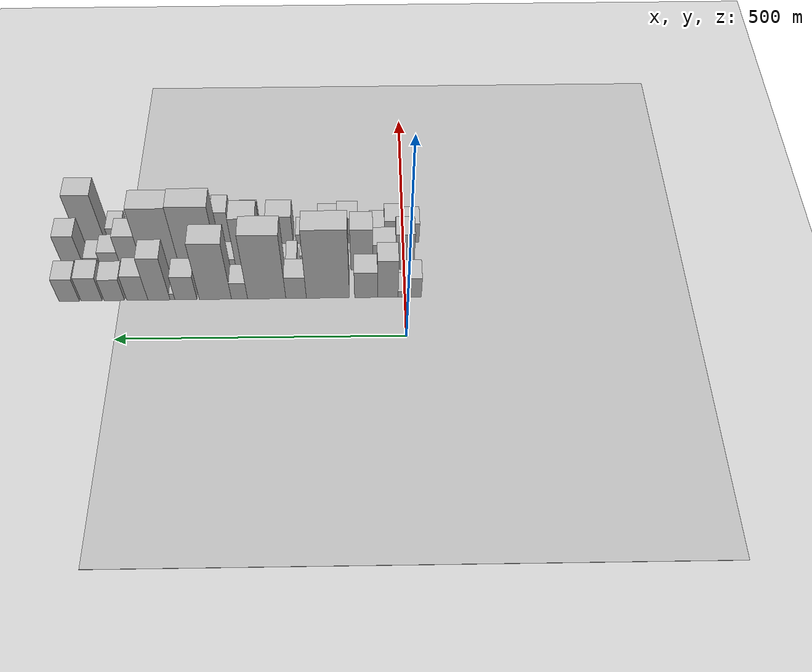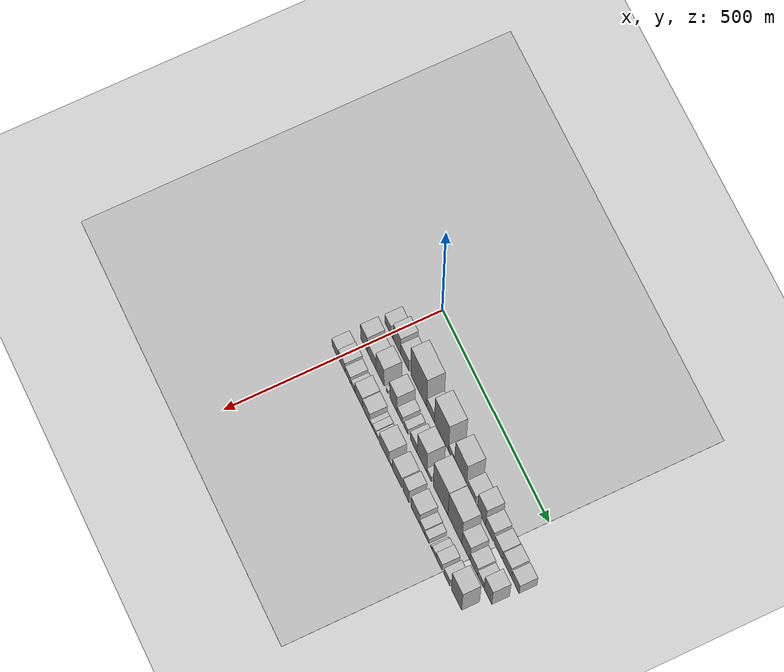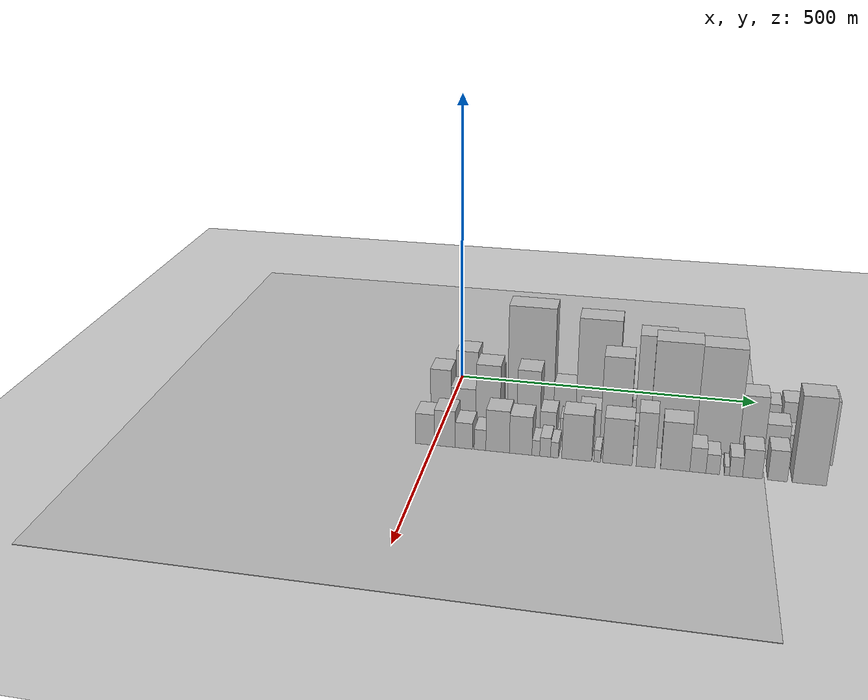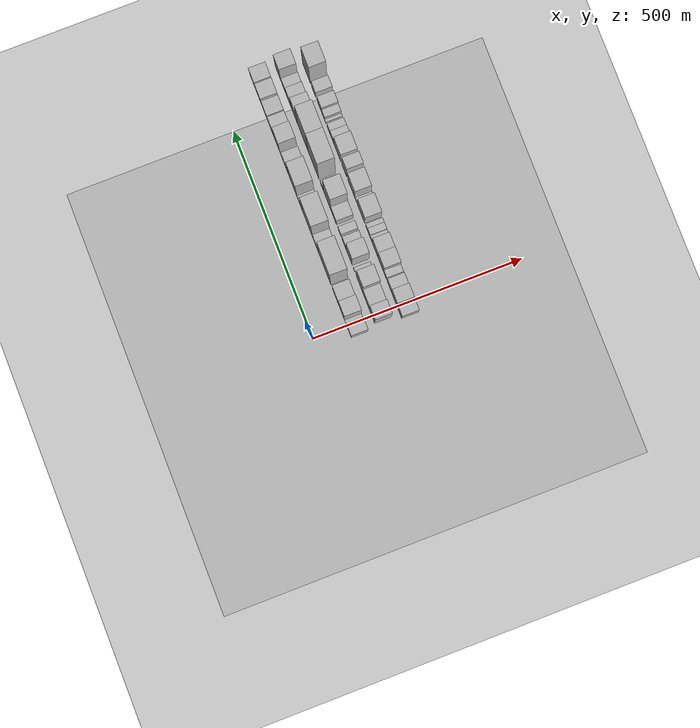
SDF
<sdf version="1.6">
 <world name="default">
  <include><name>ground_plane_1</name><uri>model://HANNAS_ground_plane</uri></include>
  <include>
   <name>ground_plane_2</name>
   <uri>model://HANNAS_ground_plane</uri>
   <pose>100 0 0  0 0 0</pose>
  </include>
  <model name="building_18">
   <static>1</static>
   <pose>100.0000 -13.6003 0 0.000000 0.000000 0.000000</pose>
   <link name="link">
    <pose>0 0 28.50 0 0 0</pose>
    <collision name="collision"><geometry><box><size>40.0000 29.0871 57.0000</size></box></geometry></collision>
    <visual name="visual">
     <cast_shadows>0</cast_shadows>
     <geometry><box><size>40.0000 29.0871 57.0000</size></box></geometry>
     <material>
      <script>
       <uri>model://HANNAS_wall/materials/scripts</uri>
       <uri>model://HANNAS_wall/materials/textures</uri>
       <name>vrc/HANNAS_wall</name>
      </script>
     </material>
    </visual>
   </link>
  </model>
  <model name="building_19">
   <static>1</static>
   <pose>100.0000 8.3785 0 0.000000 0.000000 0.000000</pose>
   <link name="link">
    <pose>0 0 9.00 0 0 0</pose>
    <collision name="collision"><geometry><box><size>40.0000 8.8705 18.0000</size></box></geometry></collision>
    <visual name="visual">
     <cast_shadows>0</cast_shadows>
     <geometry><box><size>40.0000 8.8705 18.0000</size></box></geometry>
     <material>
      <script>
       <uri>model://HANNAS_wall/materials/scripts</uri>
       <uri>model://HANNAS_wall/materials/textures</uri>
       <name>vrc/HANNAS_wall</name>
      </script>
     </material>
    </visual>
   </link>
  </model>
  <model name="building_20">
   <static>1</static>
   <pose>100.0000 30.8824 0 0.000000 0.000000 0.000000</pose>
   <link name="link">
    <pose>0 0 54.00 0 0 0</pose>
    <collision name="collision"><geometry><box><size>40.0000 36.1372 108.0000</size></box></geometry></collision>
    <visual name="visual">
     <cast_shadows>0</cast_shadows>
     <geometry><box><size>40.0000 36.1372 108.0000</size></box></geometry>
     <material>
      <script>
       <uri>model://HANNAS_wall/materials/scripts</uri>
       <uri>model://HANNAS_wall/materials/textures</uri>
       <name>vrc/HANNAS_wall</name>
      </script>
     </material>
    </visual>
   </link>
  </model>
  <model name="building_21">
   <static>1</static>
   <pose>100.0000 68.9790 0 0.000000 0.000000 0.000000</pose>
   <link name="link">
    <pose>0 0 37.50 0 0 0</pose>
    <collision name="collision"><geometry><box><size>40.0000 40.0560 75.0000</size></box></geometry></collision>
    <visual name="visual">
     <cast_shadows>0</cast_shadows>
     <geometry><box><size>40.0000 40.0560 75.0000</size></box></geometry>
     <material>
      <script>
       <uri>model://HANNAS_wall/materials/scripts</uri>
       <uri>model://HANNAS_wall/materials/textures</uri>
       <name>vrc/HANNAS_wall</name>
      </script>
     </material>
    </visual>
   </link>
  </model>
  <model name="building_22">
   <static>1</static>
   <pose>100.0000 135.8817 0 0.000000 0.000000 0.000000</pose>
   <link name="link">
    <pose>0 0 97.50 0 0 0</pose>
    <collision name="collision"><geometry><box><size>40.0000 75.7494 195.0000</size></box></geometry></collision>
    <visual name="visual">
     <cast_shadows>0</cast_shadows>
     <geometry><box><size>40.0000 75.7494 195.0000</size></box></geometry>
     <material>
      <script>
       <uri>model://HANNAS_wall/materials/scripts</uri>
       <uri>model://HANNAS_wall/materials/textures</uri>
       <name>vrc/HANNAS_wall</name>
      </script>
     </material>
    </visual>
   </link>
  </model>
  <model name="building_23">
   <static>1</static>
   <pose>100.0000 191.7278 0 0.000000 0.000000 0.000000</pose>
   <link name="link">
    <pose>0 0 31.50 0 0 0</pose>
    <collision name="collision"><geometry><box><size>40.0000 35.9429 63.0000</size></box></geometry></collision>
    <visual name="visual">
     <cast_shadows>0</cast_shadows>
     <geometry><box><size>40.0000 35.9429 63.0000</size></box></geometry>
     <material>
      <script>
       <uri>model://HANNAS_wall/materials/scripts</uri>
       <uri>model://HANNAS_wall/materials/textures</uri>
       <name>vrc/HANNAS_wall</name>
      </script>
     </material>
    </visual>
   </link>
  </model>
  <model name="building_24">
   <static>1</static>
   <pose>100.0000 243.2532 0 0.000000 0.000000 0.000000</pose>
   <link name="link">
    <pose>0 0 91.50 0 0 0</pose>
    <collision name="collision"><geometry><box><size>40.0000 67.1081 183.0000</size></box></geometry></collision>
    <visual name="visual">
     <cast_shadows>0</cast_shadows>
     <geometry><box><size>40.0000 67.1081 183.0000</size></box></geometry>
     <material>
      <script>
       <uri>model://HANNAS_wall/materials/scripts</uri>
       <uri>model://HANNAS_wall/materials/textures</uri>
       <name>vrc/HANNAS_wall</name>
      </script>
     </material>
    </visual>
   </link>
  </model>
  <model name="building_25">
   <static>1</static>
   <pose>100.0000 290.9221 0 0.000000 0.000000 0.000000</pose>
   <link name="link">
    <pose>0 0 24.00 0 0 0</pose>
    <collision name="collision"><geometry><box><size>40.0000 28.2296 48.0000</size></box></geometry></collision>
    <visual name="visual">
     <cast_shadows>0</cast_shadows>
     <geometry><box><size>40.0000 28.2296 48.0000</size></box></geometry>
     <material>
      <script>
       <uri>model://HANNAS_wall/materials/scripts</uri>
       <uri>model://HANNAS_wall/materials/textures</uri>
       <name>vrc/HANNAS_wall</name>
      </script>
     </material>
    </visual>
   </link>
  </model>
  <model name="building_26">
   <static>1</static>
   <pose>100.0000 333.1549 0 0.000000 0.000000 0.000000</pose>
   <link name="link">
    <pose>0 0 81.00 0 0 0</pose>
    <collision name="collision"><geometry><box><size>40.0000 56.2360 162.0000</size></box></geometry></collision>
    <visual name="visual">
     <cast_shadows>0</cast_shadows>
     <geometry><box><size>40.0000 56.2360 162.0000</size></box></geometry>
     <material>
      <script>
       <uri>model://HANNAS_wall/materials/scripts</uri>
       <uri>model://HANNAS_wall/materials/textures</uri>
       <name>vrc/HANNAS_wall</name>
      </script>
     </material>
    </visual>
   </link>
  </model>
  <model name="building_27">
   <static>1</static>
   <pose>100.0000 384.6901 0 0.000000 0.000000 0.000000</pose>
   <link name="link">
    <pose>0 0 34.50 0 0 0</pose>
    <collision name="collision"><geometry><box><size>40.0000 38.8345 69.0000</size></box></geometry></collision>
    <visual name="visual">
     <cast_shadows>0</cast_shadows>
     <geometry><box><size>40.0000 38.8345 69.0000</size></box></geometry>
     <material>
      <script>
       <uri>model://HANNAS_wall/materials/scripts</uri>
       <uri>model://HANNAS_wall/materials/textures</uri>
       <name>vrc/HANNAS_wall</name>
      </script>
     </material>
    </visual>
   </link>
  </model>
  <model name="building_28">
   <static>1</static>
   <pose>100.0000 408.3020 0 0.000000 0.000000 0.000000</pose>
   <link name="link">
    <pose>0 0 9.00 0 0 0</pose>
    <collision name="collision"><geometry><box><size>40.0000 8.3891 18.0000</size></box></geometry></collision>
    <visual name="visual">
     <cast_shadows>0</cast_shadows>
     <geometry><box><size>40.0000 8.3891 18.0000</size></box></geometry>
     <material>
      <script>
       <uri>model://HANNAS_wall/materials/scripts</uri>
       <uri>model://HANNAS_wall/materials/textures</uri>
       <name>vrc/HANNAS_wall</name>
      </script>
     </material>
    </visual>
   </link>
  </model>
  <model name="building_29">
   <static>1</static>
   <pose>100.0000 431.8983 0 0.000000 0.000000 0.000000</pose>
   <link name="link">
    <pose>0 0 61.50 0 0 0</pose>
    <collision name="collision"><geometry><box><size>40.0000 38.8036 123.0000</size></box></geometry></collision>
    <visual name="visual">
     <cast_shadows>0</cast_shadows>
     <geometry><box><size>40.0000 38.8036 123.0000</size></box></geometry>
     <material>
      <script>
       <uri>model://HANNAS_wall/materials/scripts</uri>
       <uri>model://HANNAS_wall/materials/textures</uri>
       <name>vrc/HANNAS_wall</name>
      </script>
     </material>
    </visual>
   </link>
  </model>
  <model name="building_30">
   <static>1</static>
   <pose>100.0000 469.7049 0 0.000000 0.000000 0.000000</pose>
   <link name="link">
    <pose>0 0 36.00 0 0 0</pose>
    <collision name="collision"><geometry><box><size>40.0000 36.8095 72.0000</size></box></geometry></collision>
    <visual name="visual">
     <cast_shadows>0</cast_shadows>
     <geometry><box><size>40.0000 36.8095 72.0000</size></box></geometry>
     <material>
      <script>
       <uri>model://HANNAS_wall/materials/scripts</uri>
       <uri>model://HANNAS_wall/materials/textures</uri>
       <name>vrc/HANNAS_wall</name>
      </script>
     </material>
    </visual>
   </link>
  </model>
  <model name="building_31">
   <static>1</static>
   <pose>100.0000 510.0738 0 0.000000 0.000000 0.000000</pose>
   <link name="link">
    <pose>0 0 31.50 0 0 0</pose>
    <collision name="collision"><geometry><box><size>40.0000 35.9283 63.0000</size></box></geometry></collision>
    <visual name="visual">
     <cast_shadows>0</cast_shadows>
     <geometry><box><size>40.0000 35.9283 63.0000</size></box></geometry>
     <material>
      <script>
       <uri>model://HANNAS_wall/materials/scripts</uri>
       <uri>model://HANNAS_wall/materials/textures</uri>
       <name>vrc/HANNAS_wall</name>
      </script>
     </material>
    </visual>
   </link>
  </model>
  <model name="building_32">
   <static>1</static>
   <pose>100.0000 549.5832 0 0.000000 0.000000 0.000000</pose>
   <link name="link">
    <pose>0 0 34.50 0 0 0</pose>
    <collision name="collision"><geometry><box><size>40.0000 37.0906 69.0000</size></box></geometry></collision>
    <visual name="visual">
     <cast_shadows>0</cast_shadows>
     <geometry><box><size>40.0000 37.0906 69.0000</size></box></geometry>
     <material>
      <script>
       <uri>model://HANNAS_wall/materials/scripts</uri>
       <uri>model://HANNAS_wall/materials/textures</uri>
       <name>vrc/HANNAS_wall</name>
      </script>
     </material>
    </visual>
   </link>
  </model>
  <model name="building_33">
   <static>1</static>
   <pose>100.0000 588.9337 0 0.000000 0.000000 0.000000</pose>
   <link name="link">
    <pose>0 0 33.00 0 0 0</pose>
    <collision name="collision"><geometry><box><size>40.0000 35.6104 66.0000</size></box></geometry></collision>
    <visual name="visual">
     <cast_shadows>0</cast_shadows>
     <geometry><box><size>40.0000 35.6104 66.0000</size></box></geometry>
     <material>
      <script>
       <uri>model://HANNAS_wall/materials/scripts</uri>
       <uri>model://HANNAS_wall/materials/textures</uri>
       <name>vrc/HANNAS_wall</name>
      </script>
     </material>
    </visual>
   </link>
  </model>
  <model name="building_50">
   <static>1</static>
   <pose>160.0000 -0.6648 0 0.000000 0.000000 0.000000</pose>
   <link name="link">
    <pose>0 0 51.00 0 0 0</pose>
    <collision name="collision"><geometry><box><size>40.0000 32.8262 102.0000</size></box></geometry></collision>
    <visual name="visual">
     <cast_shadows>0</cast_shadows>
     <geometry><box><size>40.0000 32.8262 102.0000</size></box></geometry>
     <material>
      <script>
       <uri>model://HANNAS_wall/materials/scripts</uri>
       <uri>model://HANNAS_wall/materials/textures</uri>
       <name>vrc/HANNAS_wall</name>
      </script>
     </material>
    </visual>
   </link>
  </model>
  <model name="building_51">
   <static>1</static>
   <pose>160.0000 36.0447 0 0.000000 0.000000 0.000000</pose>
   <link name="link">
    <pose>0 0 36.00 0 0 0</pose>
    <collision name="collision"><geometry><box><size>40.0000 40.5929 72.0000</size></box></geometry></collision>
    <visual name="visual">
     <cast_shadows>0</cast_shadows>
     <geometry><box><size>40.0000 40.5929 72.0000</size></box></geometry>
     <material>
      <script>
       <uri>model://HANNAS_wall/materials/scripts</uri>
       <uri>model://HANNAS_wall/materials/textures</uri>
       <name>vrc/HANNAS_wall</name>
      </script>
     </material>
    </visual>
   </link>
  </model>
  <model name="building_52">
   <static>1</static>
   <pose>160.0000 75.9765 0 0.000000 0.000000 0.000000</pose>
   <link name="link">
    <pose>0 0 58.50 0 0 0</pose>
    <collision name="collision"><geometry><box><size>40.0000 39.2706 117.0000</size></box></geometry></collision>
    <visual name="visual">
     <cast_shadows>0</cast_shadows>
     <geometry><box><size>40.0000 39.2706 117.0000</size></box></geometry>
     <material>
      <script>
       <uri>model://HANNAS_wall/materials/scripts</uri>
       <uri>model://HANNAS_wall/materials/textures</uri>
       <name>vrc/HANNAS_wall</name>
      </script>
     </material>
    </visual>
   </link>
  </model>
  <model name="building_53">
   <static>1</static>
   <pose>160.0000 109.2869 0 0.000000 0.000000 0.000000</pose>
   <link name="link">
    <pose>0 0 10.50 0 0 0</pose>
    <collision name="collision"><geometry><box><size>40.0000 9.3502 21.0000</size></box></geometry></collision>
    <visual name="visual">
     <cast_shadows>0</cast_shadows>
     <geometry><box><size>40.0000 9.3502 21.0000</size></box></geometry>
     <material>
      <script>
       <uri>model://HANNAS_wall/materials/scripts</uri>
       <uri>model://HANNAS_wall/materials/textures</uri>
       <name>vrc/HANNAS_wall</name>
      </script>
     </material>
    </visual>
   </link>
  </model>
  <model name="building_54">
   <static>1</static>
   <pose>160.0000 140.4890 0 0.000000 0.000000 0.000000</pose>
   <link name="link">
    <pose>0 0 57.00 0 0 0</pose>
    <collision name="collision"><geometry><box><size>40.0000 37.0540 114.0000</size></box></geometry></collision>
    <visual name="visual">
     <cast_shadows>0</cast_shadows>
     <geometry><box><size>40.0000 37.0540 114.0000</size></box></geometry>
     <material>
      <script>
       <uri>model://HANNAS_wall/materials/scripts</uri>
       <uri>model://HANNAS_wall/materials/textures</uri>
       <name>vrc/HANNAS_wall</name>
      </script>
     </material>
    </visual>
   </link>
  </model>
  <model name="building_55">
   <static>1</static>
   <pose>160.0000 171.8377 0 0.000000 0.000000 0.000000</pose>
   <link name="link">
    <pose>0 0 22.50 0 0 0</pose>
    <collision name="collision"><geometry><box><size>40.0000 25.6434 45.0000</size></box></geometry></collision>
    <visual name="visual">
     <cast_shadows>0</cast_shadows>
     <geometry><box><size>40.0000 25.6434 45.0000</size></box></geometry>
     <material>
      <script>
       <uri>model://HANNAS_wall/materials/scripts</uri>
       <uri>model://HANNAS_wall/materials/textures</uri>
       <name>vrc/HANNAS_wall</name>
      </script>
     </material>
    </visual>
   </link>
  </model>
  <model name="building_56">
   <static>1</static>
   <pose>160.0000 200.3286 0 0.000000 0.000000 0.000000</pose>
   <link name="link">
    <pose>0 0 18.00 0 0 0</pose>
    <collision name="collision"><geometry><box><size>40.0000 19.3385 36.0000</size></box></geometry></collision>
    <visual name="visual">
     <cast_shadows>0</cast_shadows>
     <geometry><box><size>40.0000 19.3385 36.0000</size></box></geometry>
     <material>
      <script>
       <uri>model://HANNAS_wall/materials/scripts</uri>
       <uri>model://HANNAS_wall/materials/textures</uri>
       <name>vrc/HANNAS_wall</name>
      </script>
     </material>
    </visual>
   </link>
  </model>
  <model name="building_57">
   <static>1</static>
   <pose>160.0000 236.9625 0 0.000000 0.000000 0.000000</pose>
   <link name="link">
    <pose>0 0 28.50 0 0 0</pose>
    <collision name="collision"><geometry><box><size>40.0000 33.9293 57.0000</size></box></geometry></collision>
    <visual name="visual">
     <cast_shadows>0</cast_shadows>
     <geometry><box><size>40.0000 33.9293 57.0000</size></box></geometry>
     <material>
      <script>
       <uri>model://HANNAS_wall/materials/scripts</uri>
       <uri>model://HANNAS_wall/materials/textures</uri>
       <name>vrc/HANNAS_wall</name>
      </script>
     </material>
    </visual>
   </link>
  </model>
  <model name="building_58">
   <static>1</static>
   <pose>160.0000 276.8213 0 0.000000 0.000000 0.000000</pose>
   <link name="link">
    <pose>0 0 75.00 0 0 0</pose>
    <collision name="collision"><geometry><box><size>40.0000 45.7883 150.0000</size></box></geometry></collision>
    <visual name="visual">
     <cast_shadows>0</cast_shadows>
     <geometry><box><size>40.0000 45.7883 150.0000</size></box></geometry>
     <material>
      <script>
       <uri>model://HANNAS_wall/materials/scripts</uri>
       <uri>model://HANNAS_wall/materials/textures</uri>
       <name>vrc/HANNAS_wall</name>
      </script>
     </material>
    </visual>
   </link>
  </model>
  <model name="building_59">
   <static>1</static>
   <pose>160.0000 310.1800 0 0.000000 0.000000 0.000000</pose>
   <link name="link">
    <pose>0 0 18.00 0 0 0</pose>
    <collision name="collision"><geometry><box><size>40.0000 20.9290 36.0000</size></box></geometry></collision>
    <visual name="visual">
     <cast_shadows>0</cast_shadows>
     <geometry><box><size>40.0000 20.9290 36.0000</size></box></geometry>
     <material>
      <script>
       <uri>model://HANNAS_wall/materials/scripts</uri>
       <uri>model://HANNAS_wall/materials/textures</uri>
       <name>vrc/HANNAS_wall</name>
      </script>
     </material>
    </visual>
   </link>
  </model>
  <model name="building_60">
   <static>1</static>
   <pose>160.0000 364.5335 0 0.000000 0.000000 0.000000</pose>
   <link name="link">
    <pose>0 0 91.50 0 0 0</pose>
    <collision name="collision"><geometry><box><size>40.0000 69.7780 183.0000</size></box></geometry></collision>
    <visual name="visual">
     <cast_shadows>0</cast_shadows>
     <geometry><box><size>40.0000 69.7780 183.0000</size></box></geometry>
     <material>
      <script>
       <uri>model://HANNAS_wall/materials/scripts</uri>
       <uri>model://HANNAS_wall/materials/textures</uri>
       <name>vrc/HANNAS_wall</name>
      </script>
     </material>
    </visual>
   </link>
  </model>
  <model name="building_61">
   <static>1</static>
   <pose>160.0000 431.9102 0 0.000000 0.000000 0.000000</pose>
   <link name="link">
    <pose>0 0 90.00 0 0 0</pose>
    <collision name="collision"><geometry><box><size>40.0000 64.9753 180.0000</size></box></geometry></collision>
    <visual name="visual">
     <cast_shadows>0</cast_shadows>
     <geometry><box><size>40.0000 64.9753 180.0000</size></box></geometry>
     <material>
      <script>
       <uri>model://HANNAS_wall/materials/scripts</uri>
       <uri>model://HANNAS_wall/materials/textures</uri>
       <name>vrc/HANNAS_wall</name>
      </script>
     </material>
    </visual>
   </link>
  </model>
  <model name="building_62">
   <static>1</static>
   <pose>160.0000 483.4911 0 0.000000 0.000000 0.000000</pose>
   <link name="link">
    <pose>0 0 52.50 0 0 0</pose>
    <collision name="collision"><geometry><box><size>40.0000 38.1865 105.0000</size></box></geometry></collision>
    <visual name="visual">
     <cast_shadows>0</cast_shadows>
     <geometry><box><size>40.0000 38.1865 105.0000</size></box></geometry>
     <material>
      <script>
       <uri>model://HANNAS_wall/materials/scripts</uri>
       <uri>model://HANNAS_wall/materials/textures</uri>
       <name>vrc/HANNAS_wall</name>
      </script>
     </material>
    </visual>
   </link>
  </model>
  <model name="building_63">
   <static>1</static>
   <pose>160.0000 520.1741 0 0.000000 0.000000 0.000000</pose>
   <link name="link">
    <pose>0 0 30.00 0 0 0</pose>
    <collision name="collision"><geometry><box><size>40.0000 35.1795 60.0000</size></box></geometry></collision>
    <visual name="visual">
     <cast_shadows>0</cast_shadows>
     <geometry><box><size>40.0000 35.1795 60.0000</size></box></geometry>
     <material>
      <script>
       <uri>model://HANNAS_wall/materials/scripts</uri>
       <uri>model://HANNAS_wall/materials/textures</uri>
       <name>vrc/HANNAS_wall</name>
      </script>
     </material>
    </visual>
   </link>
  </model>
  <model name="building_64">
   <static>1</static>
   <pose>160.0000 551.1591 0 0.000000 0.000000 0.000000</pose>
   <link name="link">
    <pose>0 0 22.50 0 0 0</pose>
    <collision name="collision"><geometry><box><size>40.0000 26.7905 45.0000</size></box></geometry></collision>
    <visual name="visual">
     <cast_shadows>0</cast_shadows>
     <geometry><box><size>40.0000 26.7905 45.0000</size></box></geometry>
     <material>
      <script>
       <uri>model://HANNAS_wall/materials/scripts</uri>
       <uri>model://HANNAS_wall/materials/textures</uri>
       <name>vrc/HANNAS_wall</name>
      </script>
     </material>
    </visual>
   </link>
  </model>
  <model name="building_65">
   <static>1</static>
   <pose>160.0000 585.5333 0 0.000000 0.000000 0.000000</pose>
   <link name="link">
    <pose>0 0 54.00 0 0 0</pose>
    <collision name="collision"><geometry><box><size>40.0000 35.9578 108.0000</size></box></geometry></collision>
    <visual name="visual">
     <cast_shadows>0</cast_shadows>
     <geometry><box><size>40.0000 35.9578 108.0000</size></box></geometry>
     <material>
      <script>
       <uri>model://HANNAS_wall/materials/scripts</uri>
       <uri>model://HANNAS_wall/materials/textures</uri>
       <name>vrc/HANNAS_wall</name>
      </script>
     </material>
    </visual>
   </link>
  </model>
  <model name="building_86">
   <static>1</static>
   <pose>220.0000 -13.3803 0 0.000000 0.000000 0.000000</pose>
   <link name="link">
    <pose>0 0 27.00 0 0 0</pose>
    <collision name="collision"><geometry><box><size>40.0000 30.1517 54.0000</size></box></geometry></collision>
    <visual name="visual">
     <cast_shadows>0</cast_shadows>
     <geometry><box><size>40.0000 30.1517 54.0000</size></box></geometry>
     <material>
      <script>
       <uri>model://HANNAS_wall/materials/scripts</uri>
       <uri>model://HANNAS_wall/materials/textures</uri>
       <name>vrc/HANNAS_wall</name>
      </script>
     </material>
    </visual>
   </link>
  </model>
  <model name="building_87">
   <static>1</static>
   <pose>220.0000 18.2706 0 0.000000 0.000000 0.000000</pose>
   <link name="link">
    <pose>0 0 31.50 0 0 0</pose>
    <collision name="collision"><geometry><box><size>40.0000 33.1500 63.0000</size></box></geometry></collision>
    <visual name="visual">
     <cast_shadows>0</cast_shadows>
     <geometry><box><size>40.0000 33.1500 63.0000</size></box></geometry>
     <material>
      <script>
       <uri>model://HANNAS_wall/materials/scripts</uri>
       <uri>model://HANNAS_wall/materials/textures</uri>
       <name>vrc/HANNAS_wall</name>
      </script>
     </material>
    </visual>
   </link>
  </model>
  <model name="building_88">
   <static>1</static>
   <pose>220.0000 48.2484 0 0.000000 0.000000 0.000000</pose>
   <link name="link">
    <pose>0 0 22.50 0 0 0</pose>
    <collision name="collision"><geometry><box><size>40.0000 26.8056 45.0000</size></box></geometry></collision>
    <visual name="visual">
     <cast_shadows>0</cast_shadows>
     <geometry><box><size>40.0000 26.8056 45.0000</size></box></geometry>
     <material>
      <script>
       <uri>model://HANNAS_wall/materials/scripts</uri>
       <uri>model://HANNAS_wall/materials/textures</uri>
       <name>vrc/HANNAS_wall</name>
      </script>
     </material>
    </visual>
   </link>
  </model>
  <model name="building_89">
   <static>1</static>
   <pose>220.0000 73.7728 0 0.000000 0.000000 0.000000</pose>
   <link name="link">
    <pose>0 0 18.00 0 0 0</pose>
    <collision name="collision"><geometry><box><size>40.0000 18.2432 36.0000</size></box></geometry></collision>
    <visual name="visual">
     <cast_shadows>0</cast_shadows>
     <geometry><box><size>40.0000 18.2432 36.0000</size></box></geometry>
     <material>
      <script>
       <uri>model://HANNAS_wall/materials/scripts</uri>
       <uri>model://HANNAS_wall/materials/textures</uri>
       <name>vrc/HANNAS_wall</name>
      </script>
     </material>
    </visual>
   </link>
  </model>
  <model name="building_90">
   <static>1</static>
   <pose>220.0000 101.2472 0 0.000000 0.000000 0.000000</pose>
   <link name="link">
    <pose>0 0 36.00 0 0 0</pose>
    <collision name="collision"><geometry><box><size>40.0000 36.7056 72.0000</size></box></geometry></collision>
    <visual name="visual">
     <cast_shadows>0</cast_shadows>
     <geometry><box><size>40.0000 36.7056 72.0000</size></box></geometry>
     <material>
      <script>
       <uri>model://HANNAS_wall/materials/scripts</uri>
       <uri>model://HANNAS_wall/materials/textures</uri>
       <name>vrc/HANNAS_wall</name>
      </script>
     </material>
    </visual>
   </link>
  </model>
  <model name="building_91">
   <static>1</static>
   <pose>220.0000 137.0790 0 0.000000 0.000000 0.000000</pose>
   <link name="link">
    <pose>0 0 33.00 0 0 0</pose>
    <collision name="collision"><geometry><box><size>40.0000 34.9580 66.0000</size></box></geometry></collision>
    <visual name="visual">
     <cast_shadows>0</cast_shadows>
     <geometry><box><size>40.0000 34.9580 66.0000</size></box></geometry>
     <material>
      <script>
       <uri>model://HANNAS_wall/materials/scripts</uri>
       <uri>model://HANNAS_wall/materials/textures</uri>
       <name>vrc/HANNAS_wall</name>
      </script>
     </material>
    </visual>
   </link>
  </model>
  <model name="building_92">
   <static>1</static>
   <pose>220.0000 160.5952 0 0.000000 0.000000 0.000000</pose>
   <link name="link">
    <pose>0 0 13.50 0 0 0</pose>
    <collision name="collision"><geometry><box><size>40.0000 12.0743 27.0000</size></box></geometry></collision>
    <visual name="visual">
     <cast_shadows>0</cast_shadows>
     <geometry><box><size>40.0000 12.0743 27.0000</size></box></geometry>
     <material>
      <script>
       <uri>model://HANNAS_wall/materials/scripts</uri>
       <uri>model://HANNAS_wall/materials/textures</uri>
       <name>vrc/HANNAS_wall</name>
      </script>
     </material>
    </visual>
   </link>
  </model>
  <model name="building_93">
   <static>1</static>
   <pose>220.0000 174.9327 0 0.000000 0.000000 0.000000</pose>
   <link name="link">
    <pose>0 0 16.50 0 0 0</pose>
    <collision name="collision"><geometry><box><size>40.0000 16.6008 33.0000</size></box></geometry></collision>
    <visual name="visual">
     <cast_shadows>0</cast_shadows>
     <geometry><box><size>40.0000 16.6008 33.0000</size></box></geometry>
     <material>
      <script>
       <uri>model://HANNAS_wall/materials/scripts</uri>
       <uri>model://HANNAS_wall/materials/textures</uri>
       <name>vrc/HANNAS_wall</name>
      </script>
     </material>
    </visual>
   </link>
  </model>
  <model name="building_94">
   <static>1</static>
   <pose>220.0000 189.2527 0 0.000000 0.000000 0.000000</pose>
   <link name="link">
    <pose>0 0 13.50 0 0 0</pose>
    <collision name="collision"><geometry><box><size>40.0000 12.0391 27.0000</size></box></geometry></collision>
    <visual name="visual">
     <cast_shadows>0</cast_shadows>
     <geometry><box><size>40.0000 12.0391 27.0000</size></box></geometry>
     <material>
      <script>
       <uri>model://HANNAS_wall/materials/scripts</uri>
       <uri>model://HANNAS_wall/materials/textures</uri>
       <name>vrc/HANNAS_wall</name>
      </script>
     </material>
    </visual>
   </link>
  </model>
  <model name="building_95">
   <static>1</static>
   <pose>220.0000 223.1454 0 0.000000 0.000000 0.000000</pose>
   <link name="link">
    <pose>0 0 39.00 0 0 0</pose>
    <collision name="collision"><geometry><box><size>40.0000 45.7463 78.0000</size></box></geometry></collision>
    <visual name="visual">
     <cast_shadows>0</cast_shadows>
     <geometry><box><size>40.0000 45.7463 78.0000</size></box></geometry>
     <material>
      <script>
       <uri>model://HANNAS_wall/materials/scripts</uri>
       <uri>model://HANNAS_wall/materials/textures</uri>
       <name>vrc/HANNAS_wall</name>
      </script>
     </material>
    </visual>
   </link>
  </model>
  <model name="building_96">
   <static>1</static>
   <pose>220.0000 254.1421 0 0.000000 0.000000 0.000000</pose>
   <link name="link">
    <pose>0 0 10.50 0 0 0</pose>
    <collision name="collision"><geometry><box><size>40.0000 10.2472 21.0000</size></box></geometry></collision>
    <visual name="visual">
     <cast_shadows>0</cast_shadows>
     <geometry><box><size>40.0000 10.2472 21.0000</size></box></geometry>
     <material>
      <script>
       <uri>model://HANNAS_wall/materials/scripts</uri>
       <uri>model://HANNAS_wall/materials/textures</uri>
       <name>vrc/HANNAS_wall</name>
      </script>
     </material>
    </visual>
   </link>
  </model>
  <model name="building_97">
   <static>1</static>
   <pose>220.0000 284.4359 0 0.000000 0.000000 0.000000</pose>
   <link name="link">
    <pose>0 0 39.00 0 0 0</pose>
    <collision name="collision"><geometry><box><size>40.0000 44.3403 78.0000</size></box></geometry></collision>
    <visual name="visual">
     <cast_shadows>0</cast_shadows>
     <geometry><box><size>40.0000 44.3403 78.0000</size></box></geometry>
     <material>
      <script>
       <uri>model://HANNAS_wall/materials/scripts</uri>
       <uri>model://HANNAS_wall/materials/textures</uri>
       <name>vrc/HANNAS_wall</name>
      </script>
     </material>
    </visual>
   </link>
  </model>
  <model name="building_98">
   <static>1</static>
   <pose>220.0000 326.8142 0 0.000000 0.000000 0.000000</pose>
   <link name="link">
    <pose>0 0 46.50 0 0 0</pose>
    <collision name="collision"><geometry><box><size>40.0000 28.4163 93.0000</size></box></geometry></collision>
    <visual name="visual">
     <cast_shadows>0</cast_shadows>
     <geometry><box><size>40.0000 28.4163 93.0000</size></box></geometry>
     <material>
      <script>
       <uri>model://HANNAS_wall/materials/scripts</uri>
       <uri>model://HANNAS_wall/materials/textures</uri>
       <name>vrc/HANNAS_wall</name>
      </script>
     </material>
    </visual>
   </link>
  </model>
  <model name="building_99">
   <static>1</static>
   <pose>220.0000 370.4898 0 0.000000 0.000000 0.000000</pose>
   <link name="link">
    <pose>0 0 40.50 0 0 0</pose>
    <collision name="collision"><geometry><box><size>40.0000 42.9351 81.0000</size></box></geometry></collision>
    <visual name="visual">
     <cast_shadows>0</cast_shadows>
     <geometry><box><size>40.0000 42.9351 81.0000</size></box></geometry>
     <material>
      <script>
       <uri>model://HANNAS_wall/materials/scripts</uri>
       <uri>model://HANNAS_wall/materials/textures</uri>
       <name>vrc/HANNAS_wall</name>
      </script>
     </material>
    </visual>
   </link>
  </model>
  <model name="building_100">
   <static>1</static>
   <pose>220.0000 403.7696 0 0.000000 0.000000 0.000000</pose>
   <link name="link">
    <pose>0 0 21.00 0 0 0</pose>
    <collision name="collision"><geometry><box><size>40.0000 23.6244 42.0000</size></box></geometry></collision>
    <visual name="visual">
     <cast_shadows>0</cast_shadows>
     <geometry><box><size>40.0000 23.6244 42.0000</size></box></geometry>
     <material>
      <script>
       <uri>model://HANNAS_wall/materials/scripts</uri>
       <uri>model://HANNAS_wall/materials/textures</uri>
       <name>vrc/HANNAS_wall</name>
      </script>
     </material>
    </visual>
   </link>
  </model>
  <model name="building_101">
   <static>1</static>
   <pose>220.0000 425.4740 0 0.000000 0.000000 0.000000</pose>
   <link name="link">
    <pose>0 0 16.50 0 0 0</pose>
    <collision name="collision"><geometry><box><size>40.0000 19.7845 33.0000</size></box></geometry></collision>
    <visual name="visual">
     <cast_shadows>0</cast_shadows>
     <geometry><box><size>40.0000 19.7845 33.0000</size></box></geometry>
     <material>
      <script>
       <uri>model://HANNAS_wall/materials/scripts</uri>
       <uri>model://HANNAS_wall/materials/textures</uri>
       <name>vrc/HANNAS_wall</name>
      </script>
     </material>
    </visual>
   </link>
  </model>
  <model name="building_102">
   <static>1</static>
   <pose>220.0000 446.0143 0 0.000000 0.000000 0.000000</pose>
   <link name="link">
    <pose>0 0 7.50 0 0 0</pose>
    <collision name="collision"><geometry><box><size>40.0000 7.2961 15.0000</size></box></geometry></collision>
    <visual name="visual">
     <cast_shadows>0</cast_shadows>
     <geometry><box><size>40.0000 7.2961 15.0000</size></box></geometry>
     <material>
      <script>
       <uri>model://HANNAS_wall/materials/scripts</uri>
       <uri>model://HANNAS_wall/materials/textures</uri>
       <name>vrc/HANNAS_wall</name>
      </script>
     </material>
    </visual>
   </link>
  </model>
  <model name="building_103">
   <static>1</static>
   <pose>220.0000 459.1790 0 0.000000 0.000000 0.000000</pose>
   <link name="link">
    <pose>0 0 16.50 0 0 0</pose>
    <collision name="collision"><geometry><box><size>40.0000 19.0331 33.0000</size></box></geometry></collision>
    <visual name="visual">
     <cast_shadows>0</cast_shadows>
     <geometry><box><size>40.0000 19.0331 33.0000</size></box></geometry>
     <material>
      <script>
       <uri>model://HANNAS_wall/materials/scripts</uri>
       <uri>model://HANNAS_wall/materials/textures</uri>
       <name>vrc/HANNAS_wall</name>
      </script>
     </material>
    </visual>
   </link>
  </model>
  <model name="building_104">
   <static>1</static>
   <pose>220.0000 482.7803 0 0.000000 0.000000 0.000000</pose>
   <link name="link">
    <pose>0 0 24.00 0 0 0</pose>
    <collision name="collision"><geometry><box><size>40.0000 28.1695 48.0000</size></box></geometry></collision>
    <visual name="visual">
     <cast_shadows>0</cast_shadows>
     <geometry><box><size>40.0000 28.1695 48.0000</size></box></geometry>
     <material>
      <script>
       <uri>model://HANNAS_wall/materials/scripts</uri>
       <uri>model://HANNAS_wall/materials/textures</uri>
       <name>vrc/HANNAS_wall</name>
      </script>
     </material>
    </visual>
   </link>
  </model>
  <model name="building_105">
   <static>1</static>
   <pose>220.0000 518.8453 0 0.000000 0.000000 0.000000</pose>
   <link name="link">
    <pose>0 0 25.50 0 0 0</pose>
    <collision name="collision"><geometry><box><size>40.0000 27.9605 51.0000</size></box></geometry></collision>
    <visual name="visual">
     <cast_shadows>0</cast_shadows>
     <geometry><box><size>40.0000 27.9605 51.0000</size></box></geometry>
     <material>
      <script>
       <uri>model://HANNAS_wall/materials/scripts</uri>
       <uri>model://HANNAS_wall/materials/textures</uri>
       <name>vrc/HANNAS_wall</name>
      </script>
     </material>
    </visual>
   </link>
  </model>
  <model name="building_106">
   <static>1</static>
   <pose>220.0000 563.9972 0 0.000000 0.000000 0.000000</pose>
   <link name="link">
    <pose>0 0 72.00 0 0 0</pose>
    <collision name="collision"><geometry><box><size>40.0000 48.3433 144.0000</size></box></geometry></collision>
    <visual name="visual">
     <cast_shadows>0</cast_shadows>
     <geometry><box><size>40.0000 48.3433 144.0000</size></box></geometry>
     <material>
      <script>
       <uri>model://HANNAS_wall/materials/scripts</uri>
       <uri>model://HANNAS_wall/materials/textures</uri>
       <name>vrc/HANNAS_wall</name>
      </script>
     </material>
    </visual>
   </link>
  </model>
 </world>
</sdf>
